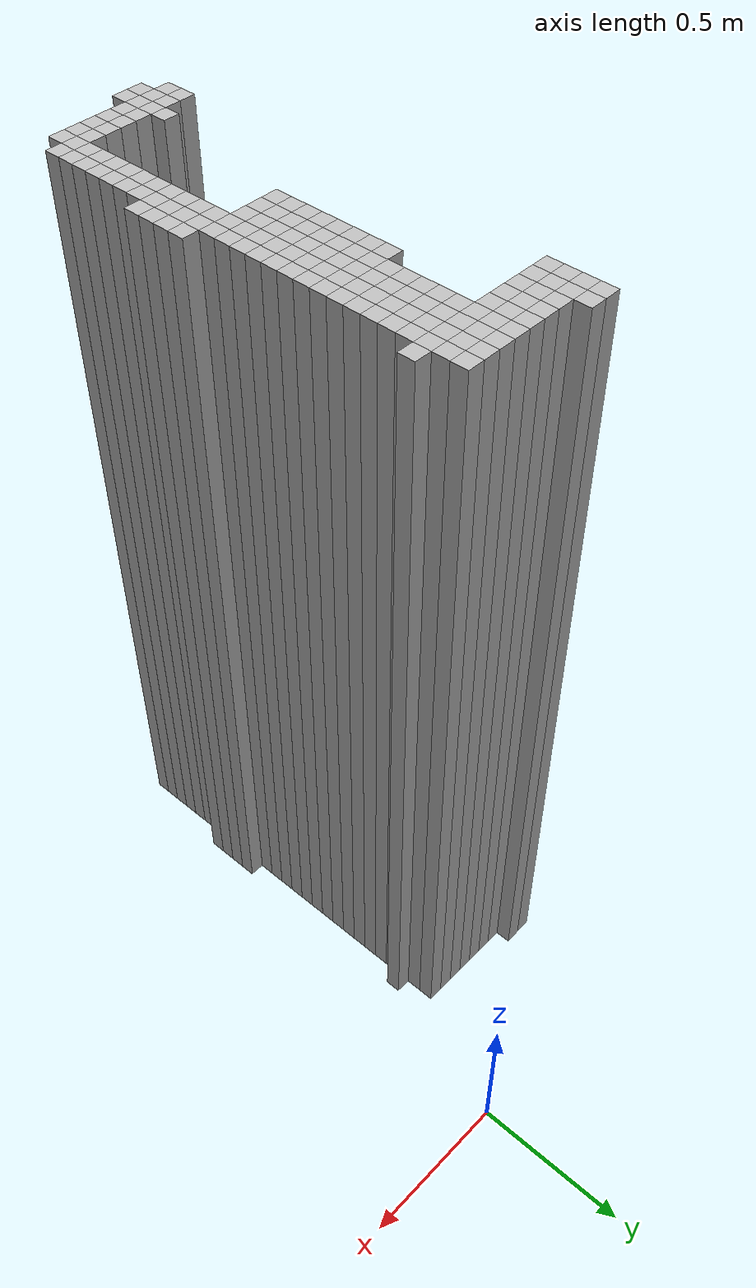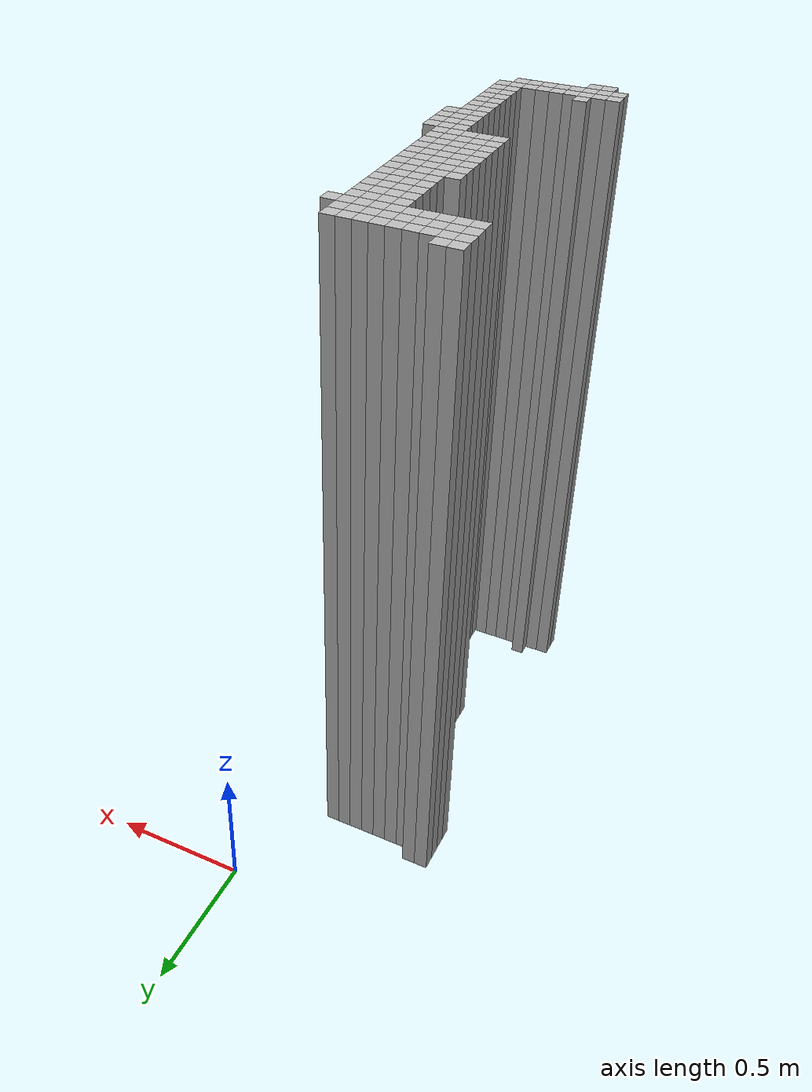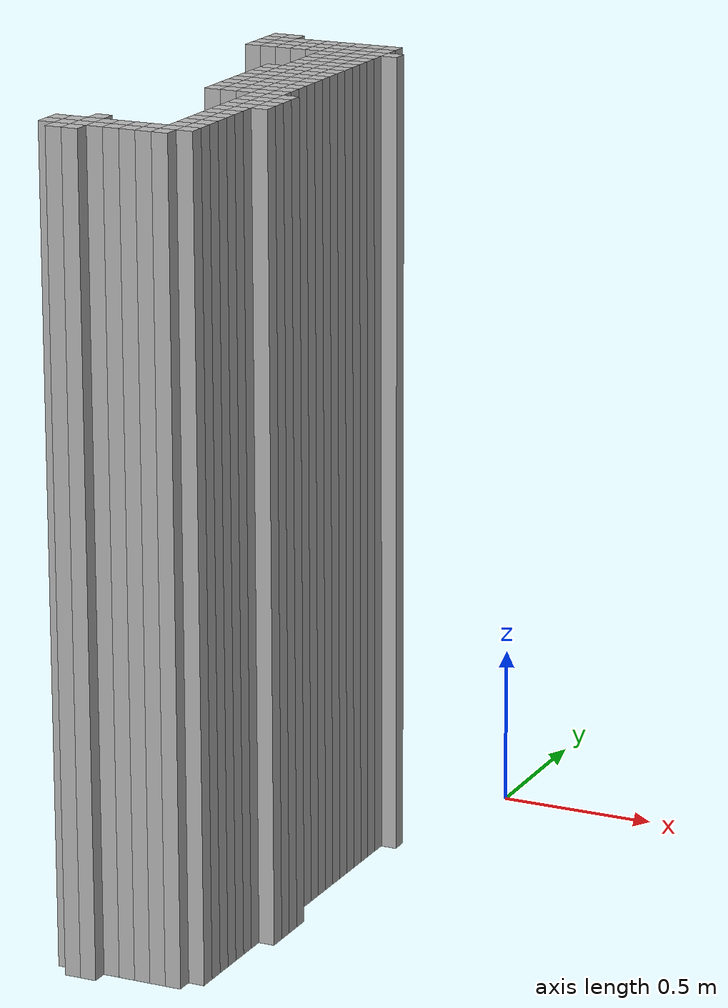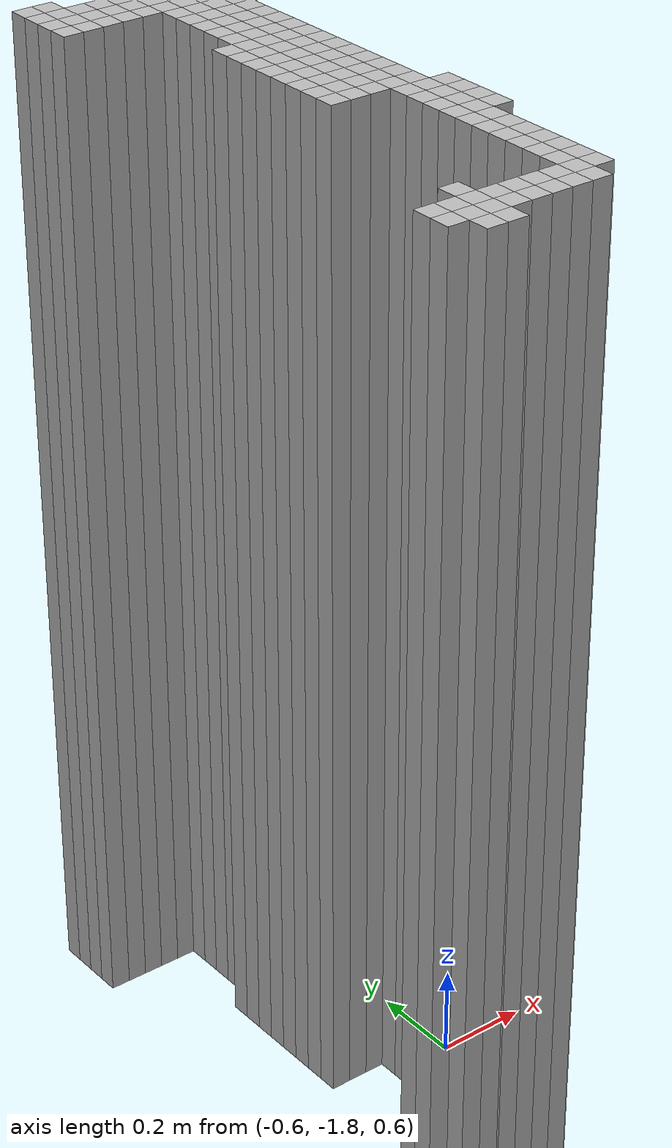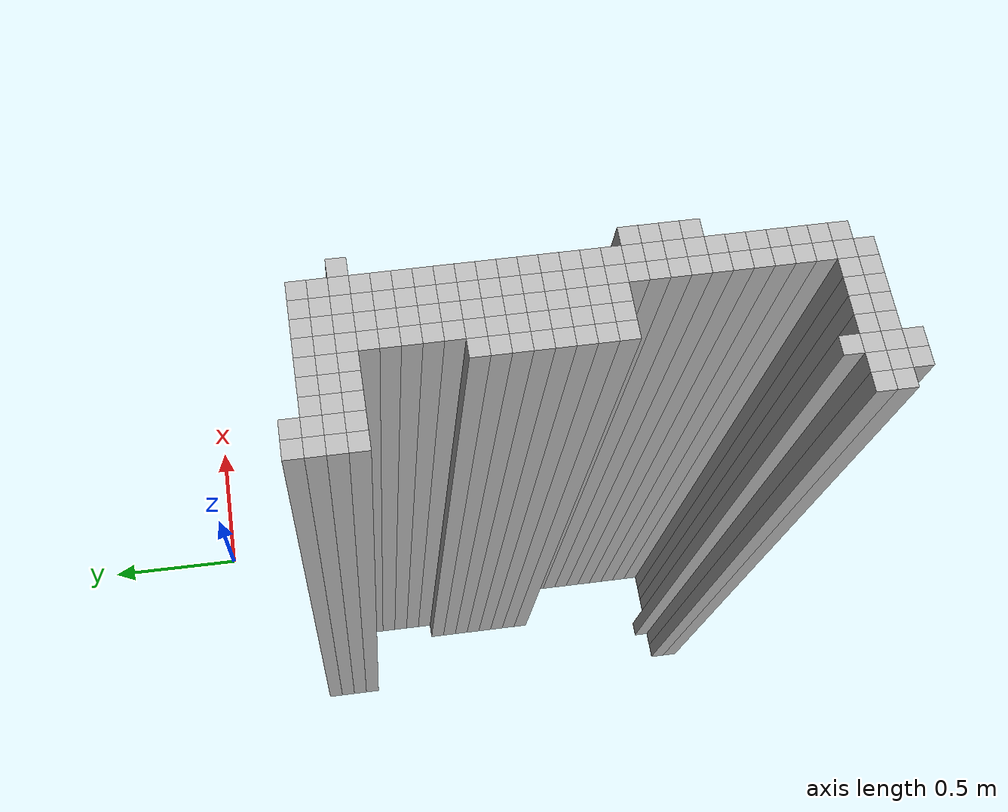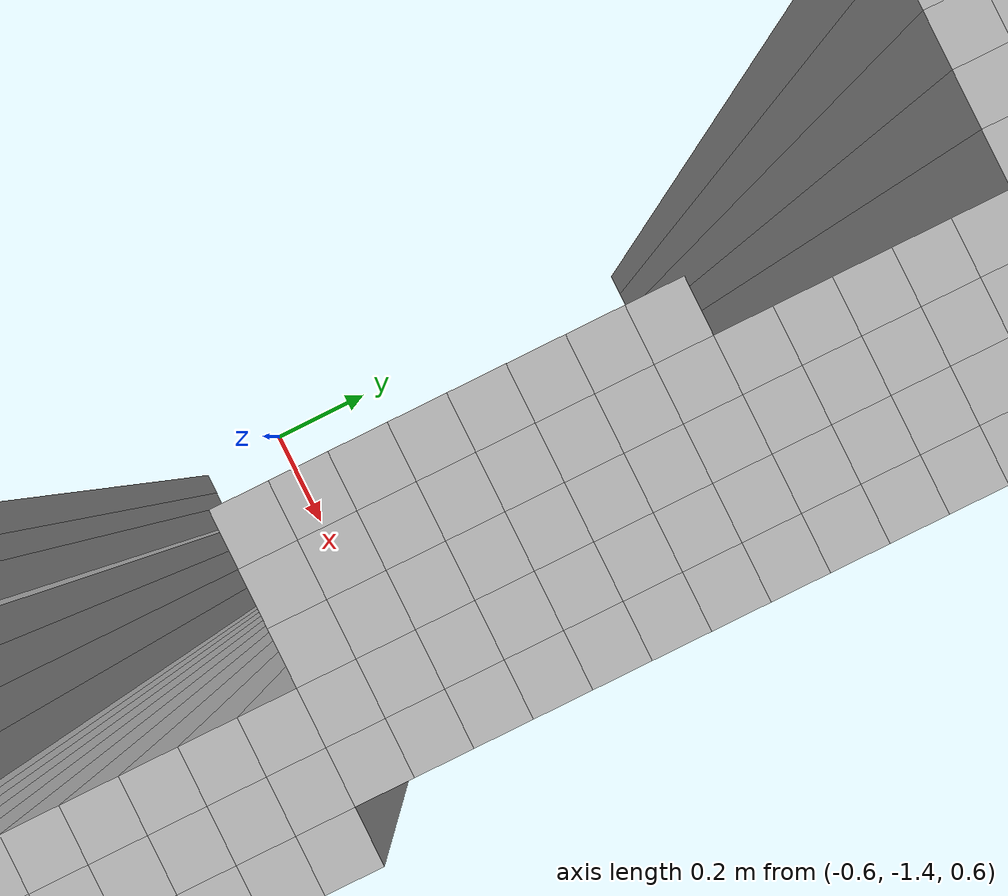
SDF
<sdf version="1.9">
 <world name="map_world">
  <model name="wall_211_161">
   <static>true</static>
   <pose>-0.611 -0.370 1.250 0 0 0</pose>
   <link name="link">
    <collision name="collision"><geometry><box><size>0.050 0.050 2.500</size></box></geometry></collision>
    <visual name="visual"><geometry><box><size>0.050 0.050 2.500</size></box></geometry></visual>
   </link>
  </model>
  <model name="wall_212_161">
   <static>true</static>
   <pose>-0.561 -0.370 1.250 0 0 0</pose>
   <link name="link">
    <collision name="collision"><geometry><box><size>0.050 0.050 2.500</size></box></geometry></collision>
    <visual name="visual"><geometry><box><size>0.050 0.050 2.500</size></box></geometry></visual>
   </link>
  </model>
  <model name="wall_211_162">
   <static>true</static>
   <pose>-0.611 -0.420 1.250 0 0 0</pose>
   <link name="link">
    <collision name="collision"><geometry><box><size>0.050 0.050 2.500</size></box></geometry></collision>
    <visual name="visual"><geometry><box><size>0.050 0.050 2.500</size></box></geometry></visual>
   </link>
  </model>
  <model name="wall_212_162">
   <static>true</static>
   <pose>-0.561 -0.420 1.250 0 0 0</pose>
   <link name="link">
    <collision name="collision"><geometry><box><size>0.050 0.050 2.500</size></box></geometry></collision>
    <visual name="visual"><geometry><box><size>0.050 0.050 2.500</size></box></geometry></visual>
   </link>
  </model>
  <model name="wall_213_162">
   <static>true</static>
   <pose>-0.511 -0.420 1.250 0 0 0</pose>
   <link name="link">
    <collision name="collision"><geometry><box><size>0.050 0.050 2.500</size></box></geometry></collision>
    <visual name="visual"><geometry><box><size>0.050 0.050 2.500</size></box></geometry></visual>
   </link>
  </model>
  <model name="wall_214_162">
   <static>true</static>
   <pose>-0.461 -0.420 1.250 0 0 0</pose>
   <link name="link">
    <collision name="collision"><geometry><box><size>0.050 0.050 2.500</size></box></geometry></collision>
    <visual name="visual"><geometry><box><size>0.050 0.050 2.500</size></box></geometry></visual>
   </link>
  </model>
  <model name="wall_215_162">
   <static>true</static>
   <pose>-0.411 -0.420 1.250 0 0 0</pose>
   <link name="link">
    <collision name="collision"><geometry><box><size>0.050 0.050 2.500</size></box></geometry></collision>
    <visual name="visual"><geometry><box><size>0.050 0.050 2.500</size></box></geometry></visual>
   </link>
  </model>
  <model name="wall_216_162">
   <static>true</static>
   <pose>-0.361 -0.420 1.250 0 0 0</pose>
   <link name="link">
    <collision name="collision"><geometry><box><size>0.050 0.050 2.500</size></box></geometry></collision>
    <visual name="visual"><geometry><box><size>0.050 0.050 2.500</size></box></geometry></visual>
   </link>
  </model>
  <model name="wall_217_162">
   <static>true</static>
   <pose>-0.311 -0.420 1.250 0 0 0</pose>
   <link name="link">
    <collision name="collision"><geometry><box><size>0.050 0.050 2.500</size></box></geometry></collision>
    <visual name="visual"><geometry><box><size>0.050 0.050 2.500</size></box></geometry></visual>
   </link>
  </model>
  <model name="wall_218_162">
   <static>true</static>
   <pose>-0.261 -0.420 1.250 0 0 0</pose>
   <link name="link">
    <collision name="collision"><geometry><box><size>0.050 0.050 2.500</size></box></geometry></collision>
    <visual name="visual"><geometry><box><size>0.050 0.050 2.500</size></box></geometry></visual>
   </link>
  </model>
  <model name="wall_219_162">
   <static>true</static>
   <pose>-0.211 -0.420 1.250 0 0 0</pose>
   <link name="link">
    <collision name="collision"><geometry><box><size>0.050 0.050 2.500</size></box></geometry></collision>
    <visual name="visual"><geometry><box><size>0.050 0.050 2.500</size></box></geometry></visual>
   </link>
  </model>
  <model name="wall_211_163">
   <static>true</static>
   <pose>-0.611 -0.470 1.250 0 0 0</pose>
   <link name="link">
    <collision name="collision"><geometry><box><size>0.050 0.050 2.500</size></box></geometry></collision>
    <visual name="visual"><geometry><box><size>0.050 0.050 2.500</size></box></geometry></visual>
   </link>
  </model>
  <model name="wall_212_163">
   <static>true</static>
   <pose>-0.561 -0.470 1.250 0 0 0</pose>
   <link name="link">
    <collision name="collision"><geometry><box><size>0.050 0.050 2.500</size></box></geometry></collision>
    <visual name="visual"><geometry><box><size>0.050 0.050 2.500</size></box></geometry></visual>
   </link>
  </model>
  <model name="wall_213_163">
   <static>true</static>
   <pose>-0.511 -0.470 1.250 0 0 0</pose>
   <link name="link">
    <collision name="collision"><geometry><box><size>0.050 0.050 2.500</size></box></geometry></collision>
    <visual name="visual"><geometry><box><size>0.050 0.050 2.500</size></box></geometry></visual>
   </link>
  </model>
  <model name="wall_214_163">
   <static>true</static>
   <pose>-0.461 -0.470 1.250 0 0 0</pose>
   <link name="link">
    <collision name="collision"><geometry><box><size>0.050 0.050 2.500</size></box></geometry></collision>
    <visual name="visual"><geometry><box><size>0.050 0.050 2.500</size></box></geometry></visual>
   </link>
  </model>
  <model name="wall_215_163">
   <static>true</static>
   <pose>-0.411 -0.470 1.250 0 0 0</pose>
   <link name="link">
    <collision name="collision"><geometry><box><size>0.050 0.050 2.500</size></box></geometry></collision>
    <visual name="visual"><geometry><box><size>0.050 0.050 2.500</size></box></geometry></visual>
   </link>
  </model>
  <model name="wall_216_163">
   <static>true</static>
   <pose>-0.361 -0.470 1.250 0 0 0</pose>
   <link name="link">
    <collision name="collision"><geometry><box><size>0.050 0.050 2.500</size></box></geometry></collision>
    <visual name="visual"><geometry><box><size>0.050 0.050 2.500</size></box></geometry></visual>
   </link>
  </model>
  <model name="wall_217_163">
   <static>true</static>
   <pose>-0.311 -0.470 1.250 0 0 0</pose>
   <link name="link">
    <collision name="collision"><geometry><box><size>0.050 0.050 2.500</size></box></geometry></collision>
    <visual name="visual"><geometry><box><size>0.050 0.050 2.500</size></box></geometry></visual>
   </link>
  </model>
  <model name="wall_218_163">
   <static>true</static>
   <pose>-0.261 -0.470 1.250 0 0 0</pose>
   <link name="link">
    <collision name="collision"><geometry><box><size>0.050 0.050 2.500</size></box></geometry></collision>
    <visual name="visual"><geometry><box><size>0.050 0.050 2.500</size></box></geometry></visual>
   </link>
  </model>
  <model name="wall_219_163">
   <static>true</static>
   <pose>-0.211 -0.470 1.250 0 0 0</pose>
   <link name="link">
    <collision name="collision"><geometry><box><size>0.050 0.050 2.500</size></box></geometry></collision>
    <visual name="visual"><geometry><box><size>0.050 0.050 2.500</size></box></geometry></visual>
   </link>
  </model>
  <model name="wall_211_164">
   <static>true</static>
   <pose>-0.611 -0.520 1.250 0 0 0</pose>
   <link name="link">
    <collision name="collision"><geometry><box><size>0.050 0.050 2.500</size></box></geometry></collision>
    <visual name="visual"><geometry><box><size>0.050 0.050 2.500</size></box></geometry></visual>
   </link>
  </model>
  <model name="wall_212_164">
   <static>true</static>
   <pose>-0.561 -0.520 1.250 0 0 0</pose>
   <link name="link">
    <collision name="collision"><geometry><box><size>0.050 0.050 2.500</size></box></geometry></collision>
    <visual name="visual"><geometry><box><size>0.050 0.050 2.500</size></box></geometry></visual>
   </link>
  </model>
  <model name="wall_213_164">
   <static>true</static>
   <pose>-0.511 -0.520 1.250 0 0 0</pose>
   <link name="link">
    <collision name="collision"><geometry><box><size>0.050 0.050 2.500</size></box></geometry></collision>
    <visual name="visual"><geometry><box><size>0.050 0.050 2.500</size></box></geometry></visual>
   </link>
  </model>
  <model name="wall_214_164">
   <static>true</static>
   <pose>-0.461 -0.520 1.250 0 0 0</pose>
   <link name="link">
    <collision name="collision"><geometry><box><size>0.050 0.050 2.500</size></box></geometry></collision>
    <visual name="visual"><geometry><box><size>0.050 0.050 2.500</size></box></geometry></visual>
   </link>
  </model>
  <model name="wall_215_164">
   <static>true</static>
   <pose>-0.411 -0.520 1.250 0 0 0</pose>
   <link name="link">
    <collision name="collision"><geometry><box><size>0.050 0.050 2.500</size></box></geometry></collision>
    <visual name="visual"><geometry><box><size>0.050 0.050 2.500</size></box></geometry></visual>
   </link>
  </model>
  <model name="wall_216_164">
   <static>true</static>
   <pose>-0.361 -0.520 1.250 0 0 0</pose>
   <link name="link">
    <collision name="collision"><geometry><box><size>0.050 0.050 2.500</size></box></geometry></collision>
    <visual name="visual"><geometry><box><size>0.050 0.050 2.500</size></box></geometry></visual>
   </link>
  </model>
  <model name="wall_217_164">
   <static>true</static>
   <pose>-0.311 -0.520 1.250 0 0 0</pose>
   <link name="link">
    <collision name="collision"><geometry><box><size>0.050 0.050 2.500</size></box></geometry></collision>
    <visual name="visual"><geometry><box><size>0.050 0.050 2.500</size></box></geometry></visual>
   </link>
  </model>
  <model name="wall_218_164">
   <static>true</static>
   <pose>-0.261 -0.520 1.250 0 0 0</pose>
   <link name="link">
    <collision name="collision"><geometry><box><size>0.050 0.050 2.500</size></box></geometry></collision>
    <visual name="visual"><geometry><box><size>0.050 0.050 2.500</size></box></geometry></visual>
   </link>
  </model>
  <model name="wall_219_164">
   <static>true</static>
   <pose>-0.211 -0.520 1.250 0 0 0</pose>
   <link name="link">
    <collision name="collision"><geometry><box><size>0.050 0.050 2.500</size></box></geometry></collision>
    <visual name="visual"><geometry><box><size>0.050 0.050 2.500</size></box></geometry></visual>
   </link>
  </model>
  <model name="wall_220_164">
   <static>true</static>
   <pose>-0.161 -0.520 1.250 0 0 0</pose>
   <link name="link">
    <collision name="collision"><geometry><box><size>0.050 0.050 2.500</size></box></geometry></collision>
    <visual name="visual"><geometry><box><size>0.050 0.050 2.500</size></box></geometry></visual>
   </link>
  </model>
  <model name="wall_216_165">
   <static>true</static>
   <pose>-0.361 -0.570 1.250 0 0 0</pose>
   <link name="link">
    <collision name="collision"><geometry><box><size>0.050 0.050 2.500</size></box></geometry></collision>
    <visual name="visual"><geometry><box><size>0.050 0.050 2.500</size></box></geometry></visual>
   </link>
  </model>
  <model name="wall_217_165">
   <static>true</static>
   <pose>-0.311 -0.570 1.250 0 0 0</pose>
   <link name="link">
    <collision name="collision"><geometry><box><size>0.050 0.050 2.500</size></box></geometry></collision>
    <visual name="visual"><geometry><box><size>0.050 0.050 2.500</size></box></geometry></visual>
   </link>
  </model>
  <model name="wall_218_165">
   <static>true</static>
   <pose>-0.261 -0.570 1.250 0 0 0</pose>
   <link name="link">
    <collision name="collision"><geometry><box><size>0.050 0.050 2.500</size></box></geometry></collision>
    <visual name="visual"><geometry><box><size>0.050 0.050 2.500</size></box></geometry></visual>
   </link>
  </model>
  <model name="wall_219_165">
   <static>true</static>
   <pose>-0.211 -0.570 1.250 0 0 0</pose>
   <link name="link">
    <collision name="collision"><geometry><box><size>0.050 0.050 2.500</size></box></geometry></collision>
    <visual name="visual"><geometry><box><size>0.050 0.050 2.500</size></box></geometry></visual>
   </link>
  </model>
  <model name="wall_216_166">
   <static>true</static>
   <pose>-0.361 -0.620 1.250 0 0 0</pose>
   <link name="link">
    <collision name="collision"><geometry><box><size>0.050 0.050 2.500</size></box></geometry></collision>
    <visual name="visual"><geometry><box><size>0.050 0.050 2.500</size></box></geometry></visual>
   </link>
  </model>
  <model name="wall_217_166">
   <static>true</static>
   <pose>-0.311 -0.620 1.250 0 0 0</pose>
   <link name="link">
    <collision name="collision"><geometry><box><size>0.050 0.050 2.500</size></box></geometry></collision>
    <visual name="visual"><geometry><box><size>0.050 0.050 2.500</size></box></geometry></visual>
   </link>
  </model>
  <model name="wall_218_166">
   <static>true</static>
   <pose>-0.261 -0.620 1.250 0 0 0</pose>
   <link name="link">
    <collision name="collision"><geometry><box><size>0.050 0.050 2.500</size></box></geometry></collision>
    <visual name="visual"><geometry><box><size>0.050 0.050 2.500</size></box></geometry></visual>
   </link>
  </model>
  <model name="wall_219_166">
   <static>true</static>
   <pose>-0.211 -0.620 1.250 0 0 0</pose>
   <link name="link">
    <collision name="collision"><geometry><box><size>0.050 0.050 2.500</size></box></geometry></collision>
    <visual name="visual"><geometry><box><size>0.050 0.050 2.500</size></box></geometry></visual>
   </link>
  </model>
  <model name="wall_216_167">
   <static>true</static>
   <pose>-0.361 -0.670 1.250 0 0 0</pose>
   <link name="link">
    <collision name="collision"><geometry><box><size>0.050 0.050 2.500</size></box></geometry></collision>
    <visual name="visual"><geometry><box><size>0.050 0.050 2.500</size></box></geometry></visual>
   </link>
  </model>
  <model name="wall_217_167">
   <static>true</static>
   <pose>-0.311 -0.670 1.250 0 0 0</pose>
   <link name="link">
    <collision name="collision"><geometry><box><size>0.050 0.050 2.500</size></box></geometry></collision>
    <visual name="visual"><geometry><box><size>0.050 0.050 2.500</size></box></geometry></visual>
   </link>
  </model>
  <model name="wall_218_167">
   <static>true</static>
   <pose>-0.261 -0.670 1.250 0 0 0</pose>
   <link name="link">
    <collision name="collision"><geometry><box><size>0.050 0.050 2.500</size></box></geometry></collision>
    <visual name="visual"><geometry><box><size>0.050 0.050 2.500</size></box></geometry></visual>
   </link>
  </model>
  <model name="wall_219_167">
   <static>true</static>
   <pose>-0.211 -0.670 1.250 0 0 0</pose>
   <link name="link">
    <collision name="collision"><geometry><box><size>0.050 0.050 2.500</size></box></geometry></collision>
    <visual name="visual"><geometry><box><size>0.050 0.050 2.500</size></box></geometry></visual>
   </link>
  </model>
  <model name="wall_216_168">
   <static>true</static>
   <pose>-0.361 -0.720 1.250 0 0 0</pose>
   <link name="link">
    <collision name="collision"><geometry><box><size>0.050 0.050 2.500</size></box></geometry></collision>
    <visual name="visual"><geometry><box><size>0.050 0.050 2.500</size></box></geometry></visual>
   </link>
  </model>
  <model name="wall_217_168">
   <static>true</static>
   <pose>-0.311 -0.720 1.250 0 0 0</pose>
   <link name="link">
    <collision name="collision"><geometry><box><size>0.050 0.050 2.500</size></box></geometry></collision>
    <visual name="visual"><geometry><box><size>0.050 0.050 2.500</size></box></geometry></visual>
   </link>
  </model>
  <model name="wall_218_168">
   <static>true</static>
   <pose>-0.261 -0.720 1.250 0 0 0</pose>
   <link name="link">
    <collision name="collision"><geometry><box><size>0.050 0.050 2.500</size></box></geometry></collision>
    <visual name="visual"><geometry><box><size>0.050 0.050 2.500</size></box></geometry></visual>
   </link>
  </model>
  <model name="wall_219_168">
   <static>true</static>
   <pose>-0.211 -0.720 1.250 0 0 0</pose>
   <link name="link">
    <collision name="collision"><geometry><box><size>0.050 0.050 2.500</size></box></geometry></collision>
    <visual name="visual"><geometry><box><size>0.050 0.050 2.500</size></box></geometry></visual>
   </link>
  </model>
  <model name="wall_216_169">
   <static>true</static>
   <pose>-0.361 -0.770 1.250 0 0 0</pose>
   <link name="link">
    <collision name="collision"><geometry><box><size>0.050 0.050 2.500</size></box></geometry></collision>
    <visual name="visual"><geometry><box><size>0.050 0.050 2.500</size></box></geometry></visual>
   </link>
  </model>
  <model name="wall_217_169">
   <static>true</static>
   <pose>-0.311 -0.770 1.250 0 0 0</pose>
   <link name="link">
    <collision name="collision"><geometry><box><size>0.050 0.050 2.500</size></box></geometry></collision>
    <visual name="visual"><geometry><box><size>0.050 0.050 2.500</size></box></geometry></visual>
   </link>
  </model>
  <model name="wall_218_169">
   <static>true</static>
   <pose>-0.261 -0.770 1.250 0 0 0</pose>
   <link name="link">
    <collision name="collision"><geometry><box><size>0.050 0.050 2.500</size></box></geometry></collision>
    <visual name="visual"><geometry><box><size>0.050 0.050 2.500</size></box></geometry></visual>
   </link>
  </model>
  <model name="wall_219_169">
   <static>true</static>
   <pose>-0.211 -0.770 1.250 0 0 0</pose>
   <link name="link">
    <collision name="collision"><geometry><box><size>0.050 0.050 2.500</size></box></geometry></collision>
    <visual name="visual"><geometry><box><size>0.050 0.050 2.500</size></box></geometry></visual>
   </link>
  </model>
  <model name="wall_215_170">
   <static>true</static>
   <pose>-0.411 -0.820 1.250 0 0 0</pose>
   <link name="link">
    <collision name="collision"><geometry><box><size>0.050 0.050 2.500</size></box></geometry></collision>
    <visual name="visual"><geometry><box><size>0.050 0.050 2.500</size></box></geometry></visual>
   </link>
  </model>
  <model name="wall_216_170">
   <static>true</static>
   <pose>-0.361 -0.820 1.250 0 0 0</pose>
   <link name="link">
    <collision name="collision"><geometry><box><size>0.050 0.050 2.500</size></box></geometry></collision>
    <visual name="visual"><geometry><box><size>0.050 0.050 2.500</size></box></geometry></visual>
   </link>
  </model>
  <model name="wall_217_170">
   <static>true</static>
   <pose>-0.311 -0.820 1.250 0 0 0</pose>
   <link name="link">
    <collision name="collision"><geometry><box><size>0.050 0.050 2.500</size></box></geometry></collision>
    <visual name="visual"><geometry><box><size>0.050 0.050 2.500</size></box></geometry></visual>
   </link>
  </model>
  <model name="wall_218_170">
   <static>true</static>
   <pose>-0.261 -0.820 1.250 0 0 0</pose>
   <link name="link">
    <collision name="collision"><geometry><box><size>0.050 0.050 2.500</size></box></geometry></collision>
    <visual name="visual"><geometry><box><size>0.050 0.050 2.500</size></box></geometry></visual>
   </link>
  </model>
  <model name="wall_219_170">
   <static>true</static>
   <pose>-0.211 -0.820 1.250 0 0 0</pose>
   <link name="link">
    <collision name="collision"><geometry><box><size>0.050 0.050 2.500</size></box></geometry></collision>
    <visual name="visual"><geometry><box><size>0.050 0.050 2.500</size></box></geometry></visual>
   </link>
  </model>
  <model name="wall_215_171">
   <static>true</static>
   <pose>-0.411 -0.870 1.250 0 0 0</pose>
   <link name="link">
    <collision name="collision"><geometry><box><size>0.050 0.050 2.500</size></box></geometry></collision>
    <visual name="visual"><geometry><box><size>0.050 0.050 2.500</size></box></geometry></visual>
   </link>
  </model>
  <model name="wall_216_171">
   <static>true</static>
   <pose>-0.361 -0.870 1.250 0 0 0</pose>
   <link name="link">
    <collision name="collision"><geometry><box><size>0.050 0.050 2.500</size></box></geometry></collision>
    <visual name="visual"><geometry><box><size>0.050 0.050 2.500</size></box></geometry></visual>
   </link>
  </model>
  <model name="wall_217_171">
   <static>true</static>
   <pose>-0.311 -0.870 1.250 0 0 0</pose>
   <link name="link">
    <collision name="collision"><geometry><box><size>0.050 0.050 2.500</size></box></geometry></collision>
    <visual name="visual"><geometry><box><size>0.050 0.050 2.500</size></box></geometry></visual>
   </link>
  </model>
  <model name="wall_218_171">
   <static>true</static>
   <pose>-0.261 -0.870 1.250 0 0 0</pose>
   <link name="link">
    <collision name="collision"><geometry><box><size>0.050 0.050 2.500</size></box></geometry></collision>
    <visual name="visual"><geometry><box><size>0.050 0.050 2.500</size></box></geometry></visual>
   </link>
  </model>
  <model name="wall_219_171">
   <static>true</static>
   <pose>-0.211 -0.870 1.250 0 0 0</pose>
   <link name="link">
    <collision name="collision"><geometry><box><size>0.050 0.050 2.500</size></box></geometry></collision>
    <visual name="visual"><geometry><box><size>0.050 0.050 2.500</size></box></geometry></visual>
   </link>
  </model>
  <model name="wall_215_172">
   <static>true</static>
   <pose>-0.411 -0.920 1.250 0 0 0</pose>
   <link name="link">
    <collision name="collision"><geometry><box><size>0.050 0.050 2.500</size></box></geometry></collision>
    <visual name="visual"><geometry><box><size>0.050 0.050 2.500</size></box></geometry></visual>
   </link>
  </model>
  <model name="wall_216_172">
   <static>true</static>
   <pose>-0.361 -0.920 1.250 0 0 0</pose>
   <link name="link">
    <collision name="collision"><geometry><box><size>0.050 0.050 2.500</size></box></geometry></collision>
    <visual name="visual"><geometry><box><size>0.050 0.050 2.500</size></box></geometry></visual>
   </link>
  </model>
  <model name="wall_217_172">
   <static>true</static>
   <pose>-0.311 -0.920 1.250 0 0 0</pose>
   <link name="link">
    <collision name="collision"><geometry><box><size>0.050 0.050 2.500</size></box></geometry></collision>
    <visual name="visual"><geometry><box><size>0.050 0.050 2.500</size></box></geometry></visual>
   </link>
  </model>
  <model name="wall_218_172">
   <static>true</static>
   <pose>-0.261 -0.920 1.250 0 0 0</pose>
   <link name="link">
    <collision name="collision"><geometry><box><size>0.050 0.050 2.500</size></box></geometry></collision>
    <visual name="visual"><geometry><box><size>0.050 0.050 2.500</size></box></geometry></visual>
   </link>
  </model>
  <model name="wall_219_172">
   <static>true</static>
   <pose>-0.211 -0.920 1.250 0 0 0</pose>
   <link name="link">
    <collision name="collision"><geometry><box><size>0.050 0.050 2.500</size></box></geometry></collision>
    <visual name="visual"><geometry><box><size>0.050 0.050 2.500</size></box></geometry></visual>
   </link>
  </model>
  <model name="wall_215_173">
   <static>true</static>
   <pose>-0.411 -0.970 1.250 0 0 0</pose>
   <link name="link">
    <collision name="collision"><geometry><box><size>0.050 0.050 2.500</size></box></geometry></collision>
    <visual name="visual"><geometry><box><size>0.050 0.050 2.500</size></box></geometry></visual>
   </link>
  </model>
  <model name="wall_216_173">
   <static>true</static>
   <pose>-0.361 -0.970 1.250 0 0 0</pose>
   <link name="link">
    <collision name="collision"><geometry><box><size>0.050 0.050 2.500</size></box></geometry></collision>
    <visual name="visual"><geometry><box><size>0.050 0.050 2.500</size></box></geometry></visual>
   </link>
  </model>
  <model name="wall_217_173">
   <static>true</static>
   <pose>-0.311 -0.970 1.250 0 0 0</pose>
   <link name="link">
    <collision name="collision"><geometry><box><size>0.050 0.050 2.500</size></box></geometry></collision>
    <visual name="visual"><geometry><box><size>0.050 0.050 2.500</size></box></geometry></visual>
   </link>
  </model>
  <model name="wall_218_173">
   <static>true</static>
   <pose>-0.261 -0.970 1.250 0 0 0</pose>
   <link name="link">
    <collision name="collision"><geometry><box><size>0.050 0.050 2.500</size></box></geometry></collision>
    <visual name="visual"><geometry><box><size>0.050 0.050 2.500</size></box></geometry></visual>
   </link>
  </model>
  <model name="wall_219_173">
   <static>true</static>
   <pose>-0.211 -0.970 1.250 0 0 0</pose>
   <link name="link">
    <collision name="collision"><geometry><box><size>0.050 0.050 2.500</size></box></geometry></collision>
    <visual name="visual"><geometry><box><size>0.050 0.050 2.500</size></box></geometry></visual>
   </link>
  </model>
  <model name="wall_215_174">
   <static>true</static>
   <pose>-0.411 -1.020 1.250 0 0 0</pose>
   <link name="link">
    <collision name="collision"><geometry><box><size>0.050 0.050 2.500</size></box></geometry></collision>
    <visual name="visual"><geometry><box><size>0.050 0.050 2.500</size></box></geometry></visual>
   </link>
  </model>
  <model name="wall_216_174">
   <static>true</static>
   <pose>-0.361 -1.020 1.250 0 0 0</pose>
   <link name="link">
    <collision name="collision"><geometry><box><size>0.050 0.050 2.500</size></box></geometry></collision>
    <visual name="visual"><geometry><box><size>0.050 0.050 2.500</size></box></geometry></visual>
   </link>
  </model>
  <model name="wall_217_174">
   <static>true</static>
   <pose>-0.311 -1.020 1.250 0 0 0</pose>
   <link name="link">
    <collision name="collision"><geometry><box><size>0.050 0.050 2.500</size></box></geometry></collision>
    <visual name="visual"><geometry><box><size>0.050 0.050 2.500</size></box></geometry></visual>
   </link>
  </model>
  <model name="wall_218_174">
   <static>true</static>
   <pose>-0.261 -1.020 1.250 0 0 0</pose>
   <link name="link">
    <collision name="collision"><geometry><box><size>0.050 0.050 2.500</size></box></geometry></collision>
    <visual name="visual"><geometry><box><size>0.050 0.050 2.500</size></box></geometry></visual>
   </link>
  </model>
  <model name="wall_219_174">
   <static>true</static>
   <pose>-0.211 -1.020 1.250 0 0 0</pose>
   <link name="link">
    <collision name="collision"><geometry><box><size>0.050 0.050 2.500</size></box></geometry></collision>
    <visual name="visual"><geometry><box><size>0.050 0.050 2.500</size></box></geometry></visual>
   </link>
  </model>
  <model name="wall_215_175">
   <static>true</static>
   <pose>-0.411 -1.070 1.250 0 0 0</pose>
   <link name="link">
    <collision name="collision"><geometry><box><size>0.050 0.050 2.500</size></box></geometry></collision>
    <visual name="visual"><geometry><box><size>0.050 0.050 2.500</size></box></geometry></visual>
   </link>
  </model>
  <model name="wall_216_175">
   <static>true</static>
   <pose>-0.361 -1.070 1.250 0 0 0</pose>
   <link name="link">
    <collision name="collision"><geometry><box><size>0.050 0.050 2.500</size></box></geometry></collision>
    <visual name="visual"><geometry><box><size>0.050 0.050 2.500</size></box></geometry></visual>
   </link>
  </model>
  <model name="wall_217_175">
   <static>true</static>
   <pose>-0.311 -1.070 1.250 0 0 0</pose>
   <link name="link">
    <collision name="collision"><geometry><box><size>0.050 0.050 2.500</size></box></geometry></collision>
    <visual name="visual"><geometry><box><size>0.050 0.050 2.500</size></box></geometry></visual>
   </link>
  </model>
  <model name="wall_218_175">
   <static>true</static>
   <pose>-0.261 -1.070 1.250 0 0 0</pose>
   <link name="link">
    <collision name="collision"><geometry><box><size>0.050 0.050 2.500</size></box></geometry></collision>
    <visual name="visual"><geometry><box><size>0.050 0.050 2.500</size></box></geometry></visual>
   </link>
  </model>
  <model name="wall_219_175">
   <static>true</static>
   <pose>-0.211 -1.070 1.250 0 0 0</pose>
   <link name="link">
    <collision name="collision"><geometry><box><size>0.050 0.050 2.500</size></box></geometry></collision>
    <visual name="visual"><geometry><box><size>0.050 0.050 2.500</size></box></geometry></visual>
   </link>
  </model>
  <model name="wall_215_176">
   <static>true</static>
   <pose>-0.411 -1.120 1.250 0 0 0</pose>
   <link name="link">
    <collision name="collision"><geometry><box><size>0.050 0.050 2.500</size></box></geometry></collision>
    <visual name="visual"><geometry><box><size>0.050 0.050 2.500</size></box></geometry></visual>
   </link>
  </model>
  <model name="wall_216_176">
   <static>true</static>
   <pose>-0.361 -1.120 1.250 0 0 0</pose>
   <link name="link">
    <collision name="collision"><geometry><box><size>0.050 0.050 2.500</size></box></geometry></collision>
    <visual name="visual"><geometry><box><size>0.050 0.050 2.500</size></box></geometry></visual>
   </link>
  </model>
  <model name="wall_217_176">
   <static>true</static>
   <pose>-0.311 -1.120 1.250 0 0 0</pose>
   <link name="link">
    <collision name="collision"><geometry><box><size>0.050 0.050 2.500</size></box></geometry></collision>
    <visual name="visual"><geometry><box><size>0.050 0.050 2.500</size></box></geometry></visual>
   </link>
  </model>
  <model name="wall_218_176">
   <static>true</static>
   <pose>-0.261 -1.120 1.250 0 0 0</pose>
   <link name="link">
    <collision name="collision"><geometry><box><size>0.050 0.050 2.500</size></box></geometry></collision>
    <visual name="visual"><geometry><box><size>0.050 0.050 2.500</size></box></geometry></visual>
   </link>
  </model>
  <model name="wall_219_176">
   <static>true</static>
   <pose>-0.211 -1.120 1.250 0 0 0</pose>
   <link name="link">
    <collision name="collision"><geometry><box><size>0.050 0.050 2.500</size></box></geometry></collision>
    <visual name="visual"><geometry><box><size>0.050 0.050 2.500</size></box></geometry></visual>
   </link>
  </model>
  <model name="wall_215_177">
   <static>true</static>
   <pose>-0.411 -1.170 1.250 0 0 0</pose>
   <link name="link">
    <collision name="collision"><geometry><box><size>0.050 0.050 2.500</size></box></geometry></collision>
    <visual name="visual"><geometry><box><size>0.050 0.050 2.500</size></box></geometry></visual>
   </link>
  </model>
  <model name="wall_216_177">
   <static>true</static>
   <pose>-0.361 -1.170 1.250 0 0 0</pose>
   <link name="link">
    <collision name="collision"><geometry><box><size>0.050 0.050 2.500</size></box></geometry></collision>
    <visual name="visual"><geometry><box><size>0.050 0.050 2.500</size></box></geometry></visual>
   </link>
  </model>
  <model name="wall_217_177">
   <static>true</static>
   <pose>-0.311 -1.170 1.250 0 0 0</pose>
   <link name="link">
    <collision name="collision"><geometry><box><size>0.050 0.050 2.500</size></box></geometry></collision>
    <visual name="visual"><geometry><box><size>0.050 0.050 2.500</size></box></geometry></visual>
   </link>
  </model>
  <model name="wall_218_177">
   <static>true</static>
   <pose>-0.261 -1.170 1.250 0 0 0</pose>
   <link name="link">
    <collision name="collision"><geometry><box><size>0.050 0.050 2.500</size></box></geometry></collision>
    <visual name="visual"><geometry><box><size>0.050 0.050 2.500</size></box></geometry></visual>
   </link>
  </model>
  <model name="wall_219_177">
   <static>true</static>
   <pose>-0.211 -1.170 1.250 0 0 0</pose>
   <link name="link">
    <collision name="collision"><geometry><box><size>0.050 0.050 2.500</size></box></geometry></collision>
    <visual name="visual"><geometry><box><size>0.050 0.050 2.500</size></box></geometry></visual>
   </link>
  </model>
  <model name="wall_218_178">
   <static>true</static>
   <pose>-0.261 -1.220 1.250 0 0 0</pose>
   <link name="link">
    <collision name="collision"><geometry><box><size>0.050 0.050 2.500</size></box></geometry></collision>
    <visual name="visual"><geometry><box><size>0.050 0.050 2.500</size></box></geometry></visual>
   </link>
  </model>
  <model name="wall_219_178">
   <static>true</static>
   <pose>-0.211 -1.220 1.250 0 0 0</pose>
   <link name="link">
    <collision name="collision"><geometry><box><size>0.050 0.050 2.500</size></box></geometry></collision>
    <visual name="visual"><geometry><box><size>0.050 0.050 2.500</size></box></geometry></visual>
   </link>
  </model>
  <model name="wall_220_178">
   <static>true</static>
   <pose>-0.161 -1.220 1.250 0 0 0</pose>
   <link name="link">
    <collision name="collision"><geometry><box><size>0.050 0.050 2.500</size></box></geometry></collision>
    <visual name="visual"><geometry><box><size>0.050 0.050 2.500</size></box></geometry></visual>
   </link>
  </model>
  <model name="wall_218_179">
   <static>true</static>
   <pose>-0.261 -1.270 1.250 0 0 0</pose>
   <link name="link">
    <collision name="collision"><geometry><box><size>0.050 0.050 2.500</size></box></geometry></collision>
    <visual name="visual"><geometry><box><size>0.050 0.050 2.500</size></box></geometry></visual>
   </link>
  </model>
  <model name="wall_219_179">
   <static>true</static>
   <pose>-0.211 -1.270 1.250 0 0 0</pose>
   <link name="link">
    <collision name="collision"><geometry><box><size>0.050 0.050 2.500</size></box></geometry></collision>
    <visual name="visual"><geometry><box><size>0.050 0.050 2.500</size></box></geometry></visual>
   </link>
  </model>
  <model name="wall_220_179">
   <static>true</static>
   <pose>-0.161 -1.270 1.250 0 0 0</pose>
   <link name="link">
    <collision name="collision"><geometry><box><size>0.050 0.050 2.500</size></box></geometry></collision>
    <visual name="visual"><geometry><box><size>0.050 0.050 2.500</size></box></geometry></visual>
   </link>
  </model>
  <model name="wall_218_180">
   <static>true</static>
   <pose>-0.261 -1.320 1.250 0 0 0</pose>
   <link name="link">
    <collision name="collision"><geometry><box><size>0.050 0.050 2.500</size></box></geometry></collision>
    <visual name="visual"><geometry><box><size>0.050 0.050 2.500</size></box></geometry></visual>
   </link>
  </model>
  <model name="wall_219_180">
   <static>true</static>
   <pose>-0.211 -1.320 1.250 0 0 0</pose>
   <link name="link">
    <collision name="collision"><geometry><box><size>0.050 0.050 2.500</size></box></geometry></collision>
    <visual name="visual"><geometry><box><size>0.050 0.050 2.500</size></box></geometry></visual>
   </link>
  </model>
  <model name="wall_220_180">
   <static>true</static>
   <pose>-0.161 -1.320 1.250 0 0 0</pose>
   <link name="link">
    <collision name="collision"><geometry><box><size>0.050 0.050 2.500</size></box></geometry></collision>
    <visual name="visual"><geometry><box><size>0.050 0.050 2.500</size></box></geometry></visual>
   </link>
  </model>
  <model name="wall_218_181">
   <static>true</static>
   <pose>-0.261 -1.370 1.250 0 0 0</pose>
   <link name="link">
    <collision name="collision"><geometry><box><size>0.050 0.050 2.500</size></box></geometry></collision>
    <visual name="visual"><geometry><box><size>0.050 0.050 2.500</size></box></geometry></visual>
   </link>
  </model>
  <model name="wall_219_181">
   <static>true</static>
   <pose>-0.211 -1.370 1.250 0 0 0</pose>
   <link name="link">
    <collision name="collision"><geometry><box><size>0.050 0.050 2.500</size></box></geometry></collision>
    <visual name="visual"><geometry><box><size>0.050 0.050 2.500</size></box></geometry></visual>
   </link>
  </model>
  <model name="wall_220_181">
   <static>true</static>
   <pose>-0.161 -1.370 1.250 0 0 0</pose>
   <link name="link">
    <collision name="collision"><geometry><box><size>0.050 0.050 2.500</size></box></geometry></collision>
    <visual name="visual"><geometry><box><size>0.050 0.050 2.500</size></box></geometry></visual>
   </link>
  </model>
  <model name="wall_218_182">
   <static>true</static>
   <pose>-0.261 -1.420 1.250 0 0 0</pose>
   <link name="link">
    <collision name="collision"><geometry><box><size>0.050 0.050 2.500</size></box></geometry></collision>
    <visual name="visual"><geometry><box><size>0.050 0.050 2.500</size></box></geometry></visual>
   </link>
  </model>
  <model name="wall_219_182">
   <static>true</static>
   <pose>-0.211 -1.420 1.250 0 0 0</pose>
   <link name="link">
    <collision name="collision"><geometry><box><size>0.050 0.050 2.500</size></box></geometry></collision>
    <visual name="visual"><geometry><box><size>0.050 0.050 2.500</size></box></geometry></visual>
   </link>
  </model>
  <model name="wall_218_183">
   <static>true</static>
   <pose>-0.261 -1.470 1.250 0 0 0</pose>
   <link name="link">
    <collision name="collision"><geometry><box><size>0.050 0.050 2.500</size></box></geometry></collision>
    <visual name="visual"><geometry><box><size>0.050 0.050 2.500</size></box></geometry></visual>
   </link>
  </model>
  <model name="wall_219_183">
   <static>true</static>
   <pose>-0.211 -1.470 1.250 0 0 0</pose>
   <link name="link">
    <collision name="collision"><geometry><box><size>0.050 0.050 2.500</size></box></geometry></collision>
    <visual name="visual"><geometry><box><size>0.050 0.050 2.500</size></box></geometry></visual>
   </link>
  </model>
  <model name="wall_218_184">
   <static>true</static>
   <pose>-0.261 -1.520 1.250 0 0 0</pose>
   <link name="link">
    <collision name="collision"><geometry><box><size>0.050 0.050 2.500</size></box></geometry></collision>
    <visual name="visual"><geometry><box><size>0.050 0.050 2.500</size></box></geometry></visual>
   </link>
  </model>
  <model name="wall_219_184">
   <static>true</static>
   <pose>-0.211 -1.520 1.250 0 0 0</pose>
   <link name="link">
    <collision name="collision"><geometry><box><size>0.050 0.050 2.500</size></box></geometry></collision>
    <visual name="visual"><geometry><box><size>0.050 0.050 2.500</size></box></geometry></visual>
   </link>
  </model>
  <model name="wall_218_185">
   <static>true</static>
   <pose>-0.261 -1.570 1.250 0 0 0</pose>
   <link name="link">
    <collision name="collision"><geometry><box><size>0.050 0.050 2.500</size></box></geometry></collision>
    <visual name="visual"><geometry><box><size>0.050 0.050 2.500</size></box></geometry></visual>
   </link>
  </model>
  <model name="wall_219_185">
   <static>true</static>
   <pose>-0.211 -1.570 1.250 0 0 0</pose>
   <link name="link">
    <collision name="collision"><geometry><box><size>0.050 0.050 2.500</size></box></geometry></collision>
    <visual name="visual"><geometry><box><size>0.050 0.050 2.500</size></box></geometry></visual>
   </link>
  </model>
  <model name="wall_218_186">
   <static>true</static>
   <pose>-0.261 -1.620 1.250 0 0 0</pose>
   <link name="link">
    <collision name="collision"><geometry><box><size>0.050 0.050 2.500</size></box></geometry></collision>
    <visual name="visual"><geometry><box><size>0.050 0.050 2.500</size></box></geometry></visual>
   </link>
  </model>
  <model name="wall_219_186">
   <static>true</static>
   <pose>-0.211 -1.620 1.250 0 0 0</pose>
   <link name="link">
    <collision name="collision"><geometry><box><size>0.050 0.050 2.500</size></box></geometry></collision>
    <visual name="visual"><geometry><box><size>0.050 0.050 2.500</size></box></geometry></visual>
   </link>
  </model>
  <model name="wall_213_187">
   <static>true</static>
   <pose>-0.511 -1.670 1.250 0 0 0</pose>
   <link name="link">
    <collision name="collision"><geometry><box><size>0.050 0.050 2.500</size></box></geometry></collision>
    <visual name="visual"><geometry><box><size>0.050 0.050 2.500</size></box></geometry></visual>
   </link>
  </model>
  <model name="wall_218_187">
   <static>true</static>
   <pose>-0.261 -1.670 1.250 0 0 0</pose>
   <link name="link">
    <collision name="collision"><geometry><box><size>0.050 0.050 2.500</size></box></geometry></collision>
    <visual name="visual"><geometry><box><size>0.050 0.050 2.500</size></box></geometry></visual>
   </link>
  </model>
  <model name="wall_219_187">
   <static>true</static>
   <pose>-0.211 -1.670 1.250 0 0 0</pose>
   <link name="link">
    <collision name="collision"><geometry><box><size>0.050 0.050 2.500</size></box></geometry></collision>
    <visual name="visual"><geometry><box><size>0.050 0.050 2.500</size></box></geometry></visual>
   </link>
  </model>
  <model name="wall_211_188">
   <static>true</static>
   <pose>-0.611 -1.720 1.250 0 0 0</pose>
   <link name="link">
    <collision name="collision"><geometry><box><size>0.050 0.050 2.500</size></box></geometry></collision>
    <visual name="visual"><geometry><box><size>0.050 0.050 2.500</size></box></geometry></visual>
   </link>
  </model>
  <model name="wall_212_188">
   <static>true</static>
   <pose>-0.561 -1.720 1.250 0 0 0</pose>
   <link name="link">
    <collision name="collision"><geometry><box><size>0.050 0.050 2.500</size></box></geometry></collision>
    <visual name="visual"><geometry><box><size>0.050 0.050 2.500</size></box></geometry></visual>
   </link>
  </model>
  <model name="wall_213_188">
   <static>true</static>
   <pose>-0.511 -1.720 1.250 0 0 0</pose>
   <link name="link">
    <collision name="collision"><geometry><box><size>0.050 0.050 2.500</size></box></geometry></collision>
    <visual name="visual"><geometry><box><size>0.050 0.050 2.500</size></box></geometry></visual>
   </link>
  </model>
  <model name="wall_214_188">
   <static>true</static>
   <pose>-0.461 -1.720 1.250 0 0 0</pose>
   <link name="link">
    <collision name="collision"><geometry><box><size>0.050 0.050 2.500</size></box></geometry></collision>
    <visual name="visual"><geometry><box><size>0.050 0.050 2.500</size></box></geometry></visual>
   </link>
  </model>
  <model name="wall_215_188">
   <static>true</static>
   <pose>-0.411 -1.720 1.250 0 0 0</pose>
   <link name="link">
    <collision name="collision"><geometry><box><size>0.050 0.050 2.500</size></box></geometry></collision>
    <visual name="visual"><geometry><box><size>0.050 0.050 2.500</size></box></geometry></visual>
   </link>
  </model>
  <model name="wall_216_188">
   <static>true</static>
   <pose>-0.361 -1.720 1.250 0 0 0</pose>
   <link name="link">
    <collision name="collision"><geometry><box><size>0.050 0.050 2.500</size></box></geometry></collision>
    <visual name="visual"><geometry><box><size>0.050 0.050 2.500</size></box></geometry></visual>
   </link>
  </model>
  <model name="wall_217_188">
   <static>true</static>
   <pose>-0.311 -1.720 1.250 0 0 0</pose>
   <link name="link">
    <collision name="collision"><geometry><box><size>0.050 0.050 2.500</size></box></geometry></collision>
    <visual name="visual"><geometry><box><size>0.050 0.050 2.500</size></box></geometry></visual>
   </link>
  </model>
  <model name="wall_218_188">
   <static>true</static>
   <pose>-0.261 -1.720 1.250 0 0 0</pose>
   <link name="link">
    <collision name="collision"><geometry><box><size>0.050 0.050 2.500</size></box></geometry></collision>
    <visual name="visual"><geometry><box><size>0.050 0.050 2.500</size></box></geometry></visual>
   </link>
  </model>
  <model name="wall_219_188">
   <static>true</static>
   <pose>-0.211 -1.720 1.250 0 0 0</pose>
   <link name="link">
    <collision name="collision"><geometry><box><size>0.050 0.050 2.500</size></box></geometry></collision>
    <visual name="visual"><geometry><box><size>0.050 0.050 2.500</size></box></geometry></visual>
   </link>
  </model>
  <model name="wall_211_189">
   <static>true</static>
   <pose>-0.611 -1.770 1.250 0 0 0</pose>
   <link name="link">
    <collision name="collision"><geometry><box><size>0.050 0.050 2.500</size></box></geometry></collision>
    <visual name="visual"><geometry><box><size>0.050 0.050 2.500</size></box></geometry></visual>
   </link>
  </model>
  <model name="wall_212_189">
   <static>true</static>
   <pose>-0.561 -1.770 1.250 0 0 0</pose>
   <link name="link">
    <collision name="collision"><geometry><box><size>0.050 0.050 2.500</size></box></geometry></collision>
    <visual name="visual"><geometry><box><size>0.050 0.050 2.500</size></box></geometry></visual>
   </link>
  </model>
  <model name="wall_213_189">
   <static>true</static>
   <pose>-0.511 -1.770 1.250 0 0 0</pose>
   <link name="link">
    <collision name="collision"><geometry><box><size>0.050 0.050 2.500</size></box></geometry></collision>
    <visual name="visual"><geometry><box><size>0.050 0.050 2.500</size></box></geometry></visual>
   </link>
  </model>
  <model name="wall_214_189">
   <static>true</static>
   <pose>-0.461 -1.770 1.250 0 0 0</pose>
   <link name="link">
    <collision name="collision"><geometry><box><size>0.050 0.050 2.500</size></box></geometry></collision>
    <visual name="visual"><geometry><box><size>0.050 0.050 2.500</size></box></geometry></visual>
   </link>
  </model>
  <model name="wall_215_189">
   <static>true</static>
   <pose>-0.411 -1.770 1.250 0 0 0</pose>
   <link name="link">
    <collision name="collision"><geometry><box><size>0.050 0.050 2.500</size></box></geometry></collision>
    <visual name="visual"><geometry><box><size>0.050 0.050 2.500</size></box></geometry></visual>
   </link>
  </model>
  <model name="wall_216_189">
   <static>true</static>
   <pose>-0.361 -1.770 1.250 0 0 0</pose>
   <link name="link">
    <collision name="collision"><geometry><box><size>0.050 0.050 2.500</size></box></geometry></collision>
    <visual name="visual"><geometry><box><size>0.050 0.050 2.500</size></box></geometry></visual>
   </link>
  </model>
  <model name="wall_217_189">
   <static>true</static>
   <pose>-0.311 -1.770 1.250 0 0 0</pose>
   <link name="link">
    <collision name="collision"><geometry><box><size>0.050 0.050 2.500</size></box></geometry></collision>
    <visual name="visual"><geometry><box><size>0.050 0.050 2.500</size></box></geometry></visual>
   </link>
  </model>
  <model name="wall_218_189">
   <static>true</static>
   <pose>-0.261 -1.770 1.250 0 0 0</pose>
   <link name="link">
    <collision name="collision"><geometry><box><size>0.050 0.050 2.500</size></box></geometry></collision>
    <visual name="visual"><geometry><box><size>0.050 0.050 2.500</size></box></geometry></visual>
   </link>
  </model>
  <model name="wall_212_190">
   <static>true</static>
   <pose>-0.561 -1.820 1.250 0 0 0</pose>
   <link name="link">
    <collision name="collision"><geometry><box><size>0.050 0.050 2.500</size></box></geometry></collision>
    <visual name="visual"><geometry><box><size>0.050 0.050 2.500</size></box></geometry></visual>
   </link>
  </model>
  <model name="wall_213_190">
   <static>true</static>
   <pose>-0.511 -1.820 1.250 0 0 0</pose>
   <link name="link">
    <collision name="collision"><geometry><box><size>0.050 0.050 2.500</size></box></geometry></collision>
    <visual name="visual"><geometry><box><size>0.050 0.050 2.500</size></box></geometry></visual>
   </link>
  </model>
 </world>
</sdf>
